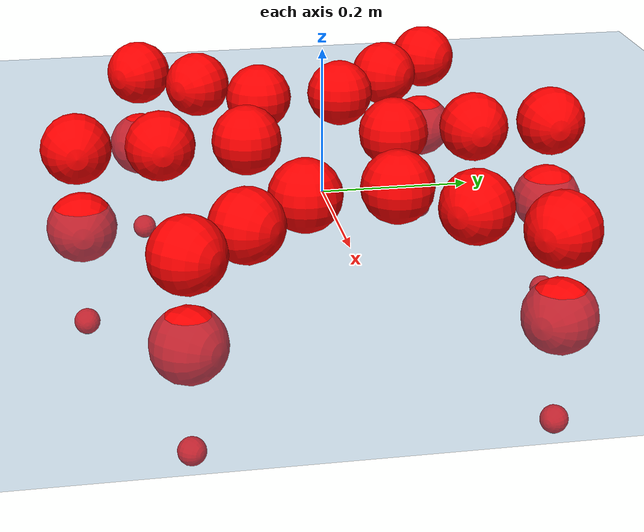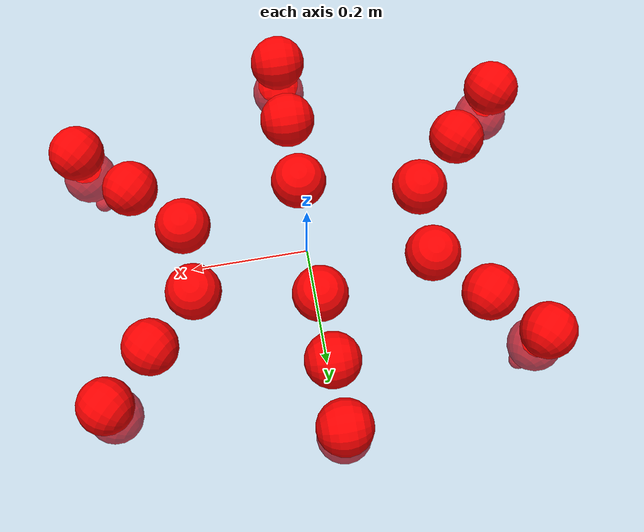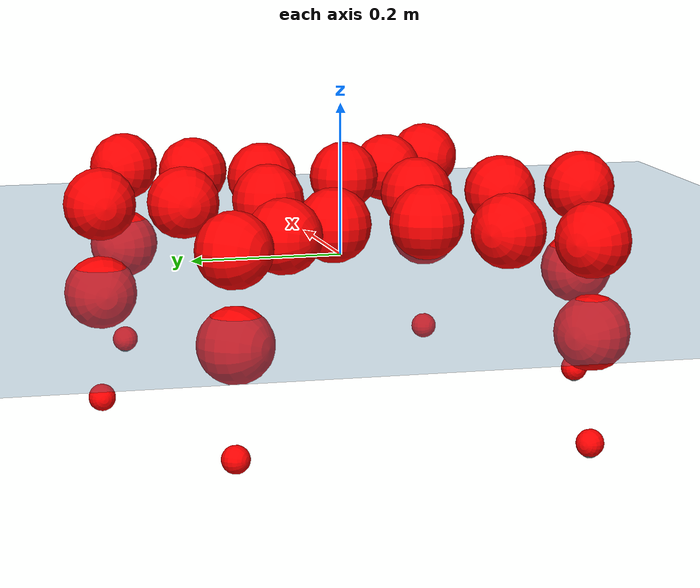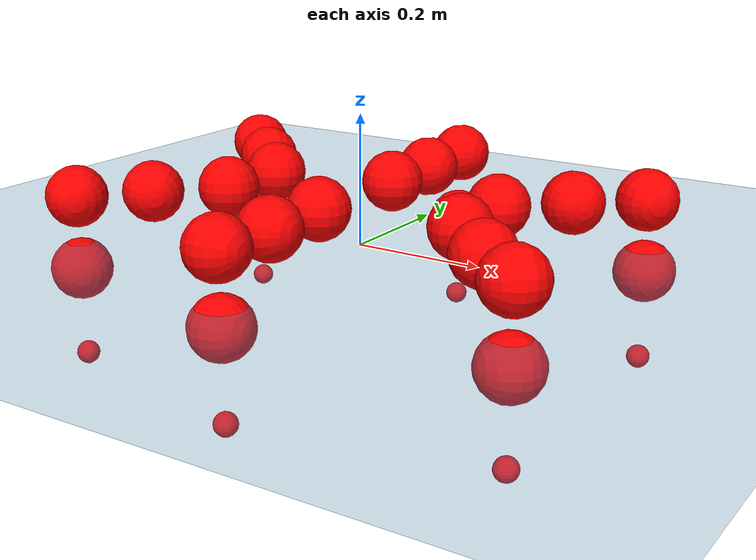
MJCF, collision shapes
<mujoco model="Golem">
  <compiler angle="radian" assetdir="assets" balanceinertia="true" inertiafromgeom="false"/>

  <option timestep="0.005" density="1.2" viscosity="2e-05"/>

  <size nkey="1"/>

  <visual>
    <quality shadowsize="8192"/>
    <map shadowclip="0.5"/>
  </visual>

  <default>
    <default class="/">
      <joint armature="0.01" damping="0.01" frictionloss="0.01"/>
      <geom contype="0" conaffinity="0" group="1" solref="-1000 -80"/>
      <site size="0.01 0.005 0.005" group="5"/>
      <general forcelimited="true" biastype="affine" gainprm="25" biasprm="0 -25 -0.5"/>
      <default class="visual">
        <geom type="mesh" group="2"/>
      </default>
      <default class="collision">
        <geom group="3"/>
      </default>
      <default class="foot">
        <geom size="0.01 0 0" condim="6" group="4" priority="1" solimp="0.015 1 0.01"/>
      </default>
      <default class="reward_collision_sphere">
        <geom group="5" rgba="1 0 0 1"/>
      </default>
    </default>
  </default>

  <asset>
    <texture type="skybox" colorspace="auto" name="//unnamed_texture_0" builtin="gradient" rgb1="0.95 0.95 0.95" rgb2="0.95 0.95 0.95" width="100" height="600"/>
    <texture type="2d" colorspace="auto" name="texplane" builtin="checker" rgb1="0.345 0.575 0.748" rgb2="0.345 0.575 0.748" markrgb="1 1 1" width="512" height="512"/>
    <material name="MatPlane" class="/" texture="texplane" texuniform="true" texrepeat="2 2" specular="0.9"/>
    <mesh name="body" class="/" file="body.stl" scale="0.001 0.001 0.001"/>
    <mesh name="coxa" class="/" file="coxa.stl" scale="0.001 0.001 0.001"/>
    <mesh name="femur" class="/" file="femur.stl" scale="0.001 0.001 0.001"/>
    <mesh name="tibia" class="/" file="tibia.stl" scale="0.001 0.001 0.001"/>
    <mesh name="tarsus" class="/" file="tarsus.stl" scale="0.001 0.001 0.001"/>
  </asset>

  <worldbody>
    <geom name="floor" class="/" size="100 100 0.125" type="plane" group="0" material="MatPlane"/>
    <light name="toplight_shadow" class="/" pos="0 0 5" dir="0.0990148 0.0990148 -0.990148" type="directional" ambient="0.04 0.04 0.04" diffuse="0.55 0.55 0.55" specular="0.12 0.12 0.12"/>
    <light name="toplight_fill" class="/" pos="0 0 5" dir="0.0990148 0.0990148 -0.990148" type="directional" castshadow="false" ambient="0.04 0.04 0.04" diffuse="0.3 0.3 0.3" specular="0.08 0.08 0.08"/>
    <body name="trunk" pos="-0.00248788 0.000451574 -0.00281451" quat="1 -1.90162e-05 -0.000315717 -8.48681e-06">
      <inertial pos="-0.000123285 -0.00239531 -0.00148096" quat="0.999995 0.0029171 0.000777619 0.000437786" mass="5.92545" diaginertia="0.0332134 0.0128763 0.0240777"/>
      <joint name="//unnamed_joint_0" type="free"/>
      <geom name="//unnamed_geom_1" class="/" pos="0 0 0.0766872" quat="1 0 0 0" type="mesh" rgba="0.9 0.9 0.9 1" mesh="body"/>
      <site name="imu" class="/" pos="0.181033 -0.0117387 0.1058" size="0.0117873"/>
      <camera name="track" class="/" pos="0 -2.1054 0" quat="0.707107 0.707107 0 0" mode="trackcom"/>
      <camera name="ego_camera" class="/" pos="0.167083 0 0.119824" quat="-0.5 -0.5 0.5 0.5"/>
      <body name="coxa_RR" pos="-0.229452 -0.0854778 0.076874" quat="0.382891 0.000456475 -3.54914e-05 -0.923793">
        <inertial pos="-0.0020987 0.000285046 -0.00253339" quat="0.999913 0.00870896 0.00526705 0.00836617" mass="0.320081" diaginertia="0.0347122 0.0127372 0.0240409"/>
        <joint name="coxa_joint_RR" class="/" pos="0 0 0" axis="-0.0028459 -0.00873969 -0.999958" range="-3.19324 3.15221" armature="0.0101153" damping="0" frictionloss="0.0101521"/>
        <geom name="//unnamed_geom_2" class="/" type="mesh" rgba="0.2 0.2 0.2 1" mesh="coxa"/>
        <geom name="//unnamed_geom_3" class="reward_collision_sphere" size="0.0471492" pos="-0.0385576 0 0"/>
        <body name="femur_RR" pos="0.0766114 -0.00119794 -0.00118317" quat="0.500128 -0.500232 0.499846 0.499794">
          <inertial pos="-0.00277448 0.000704667 -0.000304634" quat="0.999985 -0.000536546 -0.00536684 -0.00133224" mass="0.327446" diaginertia="0.035599 0.013146 0.0246294"/>
          <joint name="femur_joint_RR" class="/" pos="0 0 0" axis="0.00296898 0.011838 -0.999926" range="-3.12231 3.14077" armature="0.0130878" damping="0.0223235" frictionloss="0.0115625"/>
          <geom name="//unnamed_geom_4" class="/" type="mesh" rgba="0.9 0.9 0.9 1" mesh="femur"/>
          <geom name="//unnamed_geom_5" class="reward_collision_sphere" size="0.0471492"/>
          <body name="tibia_RR" pos="0.00145213 -0.114076 0.000723983" quat="0.000208019 1 0.000156123 -0.000216727">
            <inertial pos="0.0026982 0.00050666 -0.000512378" quat="0.999998 -0.00154085 -0.000180538 0.00132409" mass="0.340689" diaginertia="0.0348761 0.012867 0.0247914"/>
            <joint name="tibia_joint_RR" class="/" pos="0 0 0" axis="-0.000762745 -0.000554003 1" stiffness="0.00129002" range="-3.1379 3.13941" armature="0.0115" damping="0.0131778" frictionloss="0.0102211"/>
            <geom name="//unnamed_geom_6" class="/" type="mesh" rgba="0.2 0.2 0.2 1" mesh="tibia"/>
            <geom name="//unnamed_geom_7" class="reward_collision_sphere" size="0.0471492"/>
            <body name="tarsus_RR" pos="0.113726 -0.000367138 -0.000589474" quat="1 9.88816e-05 -7.00948e-05 -7.26496e-05">
              <inertial pos="0.0746452 5.74851e-05 0.00033347" quat="0.490347 0.505468 0.507621 0.496369" mass="0.33292" diaginertia="0.0350743 0.0124989 0.0246548"/>
              <joint name="tarsus_joint_RR" class="/" pos="0 0 0" axis="-0.00954676 0.0111355 0.999892" range="-3.13595 3.12788" armature="0.0112912" damping="0.0165117" frictionloss="0.0112311"/>
              <geom name="//unnamed_geom_8" class="/" type="mesh" rgba="0.9 0.9 0.9 1" mesh="tarsus"/>
              <geom name="foot_1" class="foot" size="0.012867" pos="0.143948 0 0" quat="0 -0.707107 0 0.707107"/>
              <geom name="//unnamed_geom_10" class="reward_collision_sphere" size="0.0471492"/>
              <geom name="//unnamed_geom_11" class="reward_collision_sphere" size="0.0176809" pos="0.138165 0 0"/>
              <site name="foot_1" class="foot" pos="0.143948 0 0" quat="0 -0.707107 0 0.707107" size="0.0117873"/>
            </body>
          </body>
        </body>
      </body>
      <body name="coxa_RM" pos="-0.000928833 -0.141018 0.0816262" quat="0.706686 0.00128295 9.55438e-05 -0.707526">
        <inertial pos="-0.000780043 -0.00277456 -0.00135913" quat="1 9.06768e-05 0.00048178 -0.000124471" mass="0.336256" diaginertia="0.0366605 0.0129159 0.0255236"/>
        <joint name="coxa_joint_RM" class="/" pos="0 0 0" axis="-0.00126316 0.0130282 -0.999914" range="-3.16181 3.15094" armature="0.0118651" damping="0.0154621" frictionloss="0.01179"/>
        <geom name="//unnamed_geom_12" class="/" type="mesh" rgba="0.2 0.2 0.2 1" mesh="coxa"/>
        <geom name="//unnamed_geom_13" class="reward_collision_sphere" size="0.0471492" pos="-0.0385576 0 0"/>
        <body name="femur_RM" pos="0.0767435 0.000397287 -0.00108536" quat="0.500236 -0.499697 0.49991 0.500157">
          <inertial pos="-0.000498928 -0.00289933 0.000381627" quat="0.999999 0.000490113 0.000285524 -0.00112776" mass="0.334418" diaginertia="0.0351546 0.0130038 0.0256166"/>
          <joint name="femur_joint_RM" class="/" pos="0 0 0" axis="0.00319186 -0.01424 -0.999894" stiffness="0.00994161" range="-3.10607 3.154" armature="0.013335" damping="0.0217721" frictionloss="0.0111296"/>
          <geom name="//unnamed_geom_14" class="/" type="mesh" rgba="0.9 0.9 0.9 1" mesh="femur"/>
          <geom name="//unnamed_geom_15" class="reward_collision_sphere" size="0.0471492"/>
          <body name="tibia_RM" pos="-0.00229953 -0.110574 -0.000468782" quat="0.000213021 0.999999 1.34914e-05 0.00137497">
            <inertial pos="0.000149402 0.00189569 0.000455719" quat="1 0.000385114 -0.000771611 -0.000237565" mass="0.335035" diaginertia="0.0373237 0.0138085 0.0255023"/>
            <joint name="tibia_joint_RM" class="/" pos="0 0 0" axis="-0.00250058 -0.00192701 0.999995" range="-3.08856 3.11097" armature="0.0115364" damping="0" frictionloss="0.0134196"/>
            <geom name="//unnamed_geom_16" class="/" type="mesh" rgba="0.2 0.2 0.2 1" mesh="tibia"/>
            <geom name="//unnamed_geom_17" class="reward_collision_sphere" size="0.0471492"/>
            <body name="tarsus_RM" pos="0.110273 -0.00205894 -0.00055716" quat="1 -4.42987e-06 8.48414e-06 0.00018079">
              <inertial pos="0.0755025 -0.00043428 0.0026954" quat="0.497707 0.502404 0.492694 0.507081" mass="0.337072" diaginertia="0.0373128 0.0133278 0.0254566"/>
              <joint name="tarsus_joint_RM" class="/" pos="0 0 0" axis="-0.00191517 -0.0109923 0.999938" range="-3.1656 3.13293" armature="0.0115163" damping="0.0141804" frictionloss="0.010799"/>
              <geom name="//unnamed_geom_18" class="/" type="mesh" rgba="0.9 0.9 0.9 1" mesh="tarsus"/>
              <geom name="foot_2" class="foot" size="0.0127751" pos="0.143948 0 0" quat="0 -0.707107 0 0.707107"/>
              <geom name="//unnamed_geom_20" class="reward_collision_sphere" size="0.0471492"/>
              <geom name="//unnamed_geom_21" class="reward_collision_sphere" size="0.0176809" pos="0.138165 0 0"/>
              <site name="foot_2" class="foot" pos="0.143948 0 0" quat="0 -0.707107 0 0.707107" size="0.0117873"/>
            </body>
          </body>
        </body>
      </body>
      <body name="coxa_RF" pos="0.231665 -0.0844489 0.0764265" quat="0.923645 -0.00113755 -0.00018558 -0.383247">
        <inertial pos="0.00271218 0.000933003 0.00121903" quat="0.999947 -0.00152232 0.00243168 0.00984401" mass="0.330938" diaginertia="0.0352341 0.0135441 0.0259236"/>
        <joint name="coxa_joint_RF" class="/" pos="0 0 0" axis="-0.0134846 -0.00758246 -0.99988" range="-3.13593 3.18609" armature="0.0119599" damping="0.000751878" frictionloss="0.0119156"/>
        <geom name="//unnamed_geom_22" class="/" type="mesh" rgba="0.2 0.2 0.2 1" mesh="coxa"/>
        <geom name="//unnamed_geom_23" class="reward_collision_sphere" size="0.0471492" pos="-0.0385576 0 0"/>
        <body name="femur_RF" pos="0.0765621 -0.0021919 -0.00281454" quat="0.500284 -0.499519 0.500098 0.500099">
          <inertial pos="0.000437451 3.25107e-05 0.00194505" quat="0.999955 -0.00676881 0.00344351 -0.00576347" mass="0.329677" diaginertia="0.0350353 0.0134266 0.0258887"/>
          <joint name="femur_joint_RF" class="/" pos="0 0 0" axis="-0.00367719 8.67081e-05 -0.999993" range="-3.12568 3.16481" armature="0.0119141" damping="0.00690668" frictionloss="0.0104741"/>
          <geom name="//unnamed_geom_24" class="/" type="mesh" rgba="0.9 0.9 0.9 1" mesh="femur"/>
          <geom name="//unnamed_geom_25" class="reward_collision_sphere" size="0.0471492"/>
          <body name="tibia_RF" pos="-0.00237537 -0.11436 0.00299005" quat="-0.000134209 1 0.000181171 6.87465e-05">
            <inertial pos="0.00251272 -0.00270806 0.000119962" quat="1 0.000361033 9.93084e-05 -0.000232064" mass="0.317938" diaginertia="0.0348614 0.0125475 0.0246021"/>
            <joint name="tibia_joint_RF" class="/" pos="0 0 0" axis="0.00668799 -0.00688433 0.999954" range="-3.13885 3.14007" armature="0.0124111" damping="0.0180621" frictionloss="0.0121969"/>
            <geom name="//unnamed_geom_26" class="/" type="mesh" rgba="0.2 0.2 0.2 1" mesh="tibia"/>
            <geom name="//unnamed_geom_27" class="reward_collision_sphere" size="0.0471492"/>
            <body name="tarsus_RF" pos="0.112467 0.000370297 0.000965682" quat="0.999999 0.000442723 0.000996137 0.0008775">
              <inertial pos="0.0804823 -0.0011264 0.002403" quat="0.505414 0.501828 0.502135 0.490495" mass="0.326181" diaginertia="0.0351719 0.0126232 0.025538"/>
              <joint name="tarsus_joint_RF" class="/" pos="0 0 0" axis="0.00939731 -0.000837638 0.999955" range="-3.18205 3.13701" armature="0.011868" damping="0.0106033" frictionloss="0.010565"/>
              <geom name="//unnamed_geom_28" class="/" type="mesh" rgba="0.9 0.9 0.9 1" mesh="tarsus"/>
              <geom name="foot_3" class="foot" size="0.0120616" pos="0.143948 0 0" quat="0 -0.707107 0 0.707107"/>
              <geom name="//unnamed_geom_30" class="reward_collision_sphere" size="0.0471492"/>
              <geom name="//unnamed_geom_31" class="reward_collision_sphere" size="0.0176809" pos="0.138165 0 0"/>
              <site name="foot_3" class="foot" pos="0.143948 0 0" quat="0 -0.707107 0 0.707107" size="0.0117873"/>
            </body>
          </body>
        </body>
      </body>
      <body name="coxa_LR" pos="-0.227537 0.0883016 0.0777804" quat="0.382532 0.00073769 -0.00111137 0.923941">
        <inertial pos="-0.000584779 -0.00146344 0.00154816" quat="0.999997 0.00241035 -0.000560533 -6.63506e-05" mass="0.329312" diaginertia="0.0363423 0.0134447 0.0252986"/>
        <joint name="coxa_joint_LR" class="/" pos="0 0 0" axis="-0.0029982 -0.0068209 -0.999972" range="-3.19489 3.18321" armature="0.0101995" damping="0.0180291" frictionloss="0.0115061"/>
        <geom name="//unnamed_geom_32" class="/" type="mesh" rgba="0.2 0.2 0.2 1" mesh="coxa"/>
        <geom name="//unnamed_geom_33" class="reward_collision_sphere" size="0.0471492" pos="-0.0385576 0 0"/>
        <body name="femur_LR" pos="0.0748059 -0.00267595 0.00213074" quat="0.499307 -0.500707 0.499735 0.50025">
          <inertial pos="0.0011894 -0.00287135 0.00223373" quat="0.999925 0.00346007 0.00274785 0.0114537" mass="0.333075" diaginertia="0.0357315 0.013116 0.0249665"/>
          <joint name="femur_joint_LR" class="/" pos="0 0 0" axis="0.00551568 0.00697912 0.99996" stiffness="0.00746491" range="-3.13525 3.12353" armature="0.0113649" damping="0" frictionloss="0.0113472"/>
          <geom name="//unnamed_geom_34" class="/" type="mesh" rgba="0.9 0.9 0.9 1" mesh="femur"/>
          <geom name="//unnamed_geom_35" class="reward_collision_sphere" size="0.0471492"/>
          <body name="tibia_LR" pos="0.000267348 -0.111809 -0.000158266" quat="5.72989e-05 0.999999 -0.0013245 -0.000387285">
            <inertial pos="0.00284906 -0.00168399 0.00212199" quat="0.999998 -0.000981836 -0.000740334 -0.0017029" mass="0.339592" diaginertia="0.0361602 0.0133392 0.0241705"/>
            <joint name="tibia_joint_LR" class="/" pos="0 0 0" axis="0.00567224 0.000420014 -0.999984" range="-3.13667 3.108" armature="0.0103048" damping="0.0141427" frictionloss="0.0116074"/>
            <geom name="//unnamed_geom_36" class="/" type="mesh" rgba="0.2 0.2 0.2 1" mesh="tibia"/>
            <geom name="//unnamed_geom_37" class="reward_collision_sphere" size="0.0471492"/>
            <body name="tarsus_LR" pos="0.113324 -6.20532e-05 -0.00215417" quat="1 9.05713e-05 0.000145549 0.000299028">
              <inertial pos="0.0759169 -0.00164784 -0.00234491" quat="0.499296 0.500704 0.499283 0.500716" mass="0.325379" diaginertia="0.0351148 0.0128316 0.0256852"/>
              <joint name="tarsus_joint_LR" class="/" pos="0 0 0" axis="-0.00145919 -0.00100343 -0.999998" range="-3.12297 3.11876" armature="0.0133833" damping="0.027381" frictionloss="0.0124587"/>
              <geom name="//unnamed_geom_38" class="/" type="mesh" rgba="0.9 0.9 0.9 1" mesh="tarsus"/>
              <geom name="foot_4" class="foot" size="0.0116751" pos="0.143948 0 0" quat="0.707107 0 -0.707107 0"/>
              <geom name="//unnamed_geom_40" class="reward_collision_sphere" size="0.0471492"/>
              <geom name="//unnamed_geom_41" class="reward_collision_sphere" size="0.0176809" pos="0.138165 0 0"/>
              <site name="foot_4" class="foot" pos="0.143948 0 0" quat="0.707107 0 -0.707107 0" size="0.0117873"/>
            </body>
          </body>
        </body>
      </body>
      <body name="coxa_LM" pos="-0.00300402 0.137009 0.0805171" quat="0.707121 -0.000242094 0.000210247 0.707093">
        <inertial pos="0.00139007 0.000479891 0.00290414" quat="0.999925 -0.00169683 -0.00898172 0.00818971" mass="0.321437" diaginertia="0.0342082 0.0127058 0.0237625"/>
        <joint name="coxa_joint_LM" class="/" pos="0 0 0" axis="0.00736299 -0.000289273 -0.999973" stiffness="0.00883365" range="-3.14242 3.13139" armature="0.0113877" damping="0" frictionloss="0.0101899"/>
        <geom name="//unnamed_geom_42" class="/" type="mesh" rgba="0.2 0.2 0.2 1" mesh="coxa"/>
        <geom name="//unnamed_geom_43" class="reward_collision_sphere" size="0.0471492" pos="-0.0385576 0 0"/>
        <body name="femur_LM" pos="0.0739055 0.000544269 0.00122406" quat="0.499976 -0.499894 0.500127 0.500003">
          <inertial pos="0.00255712 0.000465138 -0.00283086" quat="0.999937 0.00985656 -0.00226331 -0.0048849" mass="0.327271" diaginertia="0.0364683 0.0134331 0.0259098"/>
          <joint name="femur_joint_LM" class="/" pos="0 0 0" axis="-0.00160313 0.000325549 0.999999" range="-3.1279 3.0823" armature="0.0107634" damping="0.0212394" frictionloss="0.0118639"/>
          <geom name="//unnamed_geom_44" class="/" type="mesh" rgba="0.9 0.9 0.9 1" mesh="femur"/>
          <geom name="//unnamed_geom_45" class="reward_collision_sphere" size="0.0471492"/>
          <body name="tibia_LM" pos="-0.00229568 -0.108902 -0.000213487" quat="0.000711752 1 0.000292325 -0.000592305">
            <inertial pos="-0.000608047 0.000291096 -0.00031845" quat="0.999936 0.0107345 0.00316314 0.00142631" mass="0.328095" diaginertia="0.0344798 0.0126275 0.0252814"/>
            <joint name="tibia_joint_LM" class="/" pos="0 0 0" axis="7.3272e-05 -0.000692248 -1" stiffness="0.00925429" range="-3.09987 3.08326" armature="0.0103779" damping="0.0130414" frictionloss="0.0122805"/>
            <geom name="//unnamed_geom_46" class="/" type="mesh" rgba="0.2 0.2 0.2 1" mesh="tibia"/>
            <geom name="//unnamed_geom_47" class="reward_collision_sphere" size="0.0471492"/>
            <body name="tarsus_LM" pos="0.114231 0.000757653 -0.00293496" quat="0.999999 0.000553024 0.000247877 0.00116087">
              <inertial pos="0.0755228 -0.000186981 -0.00261771" quat="0.504716 0.494079 0.49962 0.501525" mass="0.336581" diaginertia="0.0346184 0.012924 0.0243668"/>
              <joint name="tarsus_joint_LM" class="/" pos="0 0 0" axis="0.00247321 0.00503531 -0.999984" range="-3.09707 3.13991" armature="0.0131206" damping="0.0125325" frictionloss="0.011494"/>
              <geom name="//unnamed_geom_48" class="/" type="mesh" rgba="0.9 0.9 0.9 1" mesh="tarsus"/>
              <geom name="foot_5" class="foot" size="0.0114288" pos="0.143948 0 0" quat="0.707107 0 -0.707107 0"/>
              <geom name="//unnamed_geom_50" class="reward_collision_sphere" size="0.0471492"/>
              <geom name="//unnamed_geom_51" class="reward_collision_sphere" size="0.0176809" pos="0.138165 0 0"/>
              <site name="foot_5" class="foot" pos="0.143948 0 0" quat="0.707107 0 -0.707107 0" size="0.0117873"/>
            </body>
          </body>
        </body>
      </body>
      <body name="coxa_LF" pos="0.229292 0.0869364 0.0794917" quat="0.923438 -0.000123351 0.000240347 0.383747">
        <inertial pos="0.000311237 0.000267277 -0.000714387" quat="0.999984 0.00528408 -0.00125129 -0.00187015" mass="0.333483" diaginertia="0.0352786 0.0126376 0.0242541"/>
        <joint name="coxa_joint_LF" class="/" pos="0 0 0" axis="-0.00852504 -0.00559403 -0.999948" range="-3.09424 3.13998" armature="0.0133986" damping="0.0145207" frictionloss="0.010795"/>
        <geom name="//unnamed_geom_52" class="/" type="mesh" rgba="0.2 0.2 0.2 1" mesh="coxa"/>
        <geom name="//unnamed_geom_53" class="reward_collision_sphere" size="0.0471492" pos="-0.0385576 0 0"/>
        <body name="femur_LF" pos="0.0753661 -0.00179276 -0.000845302" quat="0.500254 -0.50016 0.49965 0.499935">
          <inertial pos="-0.000411103 0.00257463 -0.00121461" quat="0.999969 0.00311695 0.000166156 -0.00717411" mass="0.340671" diaginertia="0.0373762 0.0132924 0.0248747"/>
          <joint name="femur_joint_LF" class="/" pos="0 0 0" axis="0.0111378 0.0029104 0.999934" stiffness="0.0114718" range="-3.16442 3.14313" armature="0.0132661" damping="0.00344402" frictionloss="0.011687"/>
          <geom name="//unnamed_geom_54" class="/" type="mesh" rgba="0.9 0.9 0.9 1" mesh="femur"/>
          <geom name="//unnamed_geom_55" class="reward_collision_sphere" size="0.0471492"/>
          <body name="tibia_LF" pos="0.00192328 -0.116379 -0.000107123" quat="0.000322953 1 0.000215832 -0.000230272">
            <inertial pos="0.000543778 0.000596613 -0.000530235" quat="0.999931 -0.00853506 8.95193e-05 -0.00803195" mass="0.324182" diaginertia="0.0342862 0.0131916 0.0242866"/>
            <joint name="tibia_joint_LF" class="/" pos="0 0 0" axis="0.00362629 -0.012411 -0.999916" stiffness="0.00745597" range="-3.09024 3.12659" armature="0.0111342" damping="0" frictionloss="0.0102426"/>
            <geom name="//unnamed_geom_56" class="/" type="mesh" rgba="0.2 0.2 0.2 1" mesh="tibia"/>
            <geom name="//unnamed_geom_57" class="reward_collision_sphere" size="0.0471492"/>
            <body name="tarsus_LF" pos="0.110355 0.00218203 0.00140406" quat="1 -1.55008e-05 3.80605e-05 4.29848e-05">
              <inertial pos="0.0747066 -0.00124035 0.000591346" quat="0.496962 0.498561 0.507302 0.497103" mass="0.322073" diaginertia="0.0351249 0.0128276 0.0242626"/>
              <joint name="tarsus_joint_LF" class="/" pos="0 0 0" axis="-0.000313829 -0.00173163 -0.999998" stiffness="0.00285705" range="-3.17121 3.13138" armature="0.0135713" damping="0.0203052" frictionloss="0.0134295"/>
              <geom name="//unnamed_geom_58" class="/" type="mesh" rgba="0.9 0.9 0.9 1" mesh="tarsus"/>
              <geom name="foot_6" class="foot" size="0.0128184" pos="0.143948 0 0" quat="0.707107 0 -0.707107 0"/>
              <geom name="//unnamed_geom_60" class="reward_collision_sphere" size="0.0471492"/>
              <geom name="//unnamed_geom_61" class="reward_collision_sphere" size="0.0176809" pos="0.138165 0 0"/>
              <site name="foot_6" class="foot" pos="0.143948 0 0" quat="0.707107 0 -0.707107 0" size="0.0117873"/>
            </body>
          </body>
        </body>
      </body>
    </body>
  </worldbody>

  <contact>
    <pair class="/" geom1="floor" geom2="foot_1" name="//unnamed_contact_0"/>
    <pair class="/" geom1="floor" geom2="foot_2" name="//unnamed_contact_1"/>
    <pair class="/" geom1="floor" geom2="foot_3" name="//unnamed_contact_2"/>
    <pair class="/" geom1="floor" geom2="foot_4" name="//unnamed_contact_3"/>
    <pair class="/" geom1="floor" geom2="foot_5" name="//unnamed_contact_4"/>
    <pair class="/" geom1="floor" geom2="foot_6" name="//unnamed_contact_5"/>
  </contact>

  <actuator>
    <general name="coxa_joint_RR" class="/" joint="coxa_joint_RR" forcerange="-8.15546 8.15546" gainprm="28.6851" biasprm="0 -28.6851 -0.619567"/>
    <general name="femur_joint_RR" class="/" joint="femur_joint_RR" forcerange="-8.43746 8.43746" gainprm="28.6851" biasprm="0 -28.6851 -0.619567"/>
    <general name="tibia_joint_RR" class="/" joint="tibia_joint_RR" forcerange="-8.51166 8.51166" gainprm="28.6851" biasprm="0 -28.6851 -0.619567"/>
    <general name="tarsus_joint_RR" class="/" joint="tarsus_joint_RR" forcerange="-8.40504 8.40504" gainprm="28.6851" biasprm="0 -28.6851 -0.619567"/>
    <general name="coxa_joint_RM" class="/" joint="coxa_joint_RM" forcerange="-8.83079 8.83079" gainprm="28.6851" biasprm="0 -28.6851 -0.619567"/>
    <general name="femur_joint_RM" class="/" joint="femur_joint_RM" forcerange="-8.42957 8.42957" gainprm="28.6851" biasprm="0 -28.6851 -0.619567"/>
    <general name="tibia_joint_RM" class="/" joint="tibia_joint_RM" forcerange="-8.50388 8.50388" gainprm="28.6851" biasprm="0 -28.6851 -0.619567"/>
    <general name="tarsus_joint_RM" class="/" joint="tarsus_joint_RM" forcerange="-7.91499 7.91499" gainprm="28.6851" biasprm="0 -28.6851 -0.619567"/>
    <general name="coxa_joint_RF" class="/" joint="coxa_joint_RF" forcerange="-8.85422 8.85422" gainprm="28.6851" biasprm="0 -28.6851 -0.619567"/>
    <general name="femur_joint_RF" class="/" joint="femur_joint_RF" forcerange="-8.5426 8.5426" gainprm="28.6851" biasprm="0 -28.6851 -0.619567"/>
    <general name="tibia_joint_RF" class="/" joint="tibia_joint_RF" forcerange="-8.54912 8.54912" gainprm="28.6851" biasprm="0 -28.6851 -0.619567"/>
    <general name="tarsus_joint_RF" class="/" joint="tarsus_joint_RF" forcerange="-8.07612 8.07612" gainprm="28.6851" biasprm="0 -28.6851 -0.619567"/>
    <general name="coxa_joint_LR" class="/" joint="coxa_joint_LR" forcerange="-7.83467 7.83467" gainprm="28.6851" biasprm="0 -28.6851 -0.619567"/>
    <general name="femur_joint_LR" class="/" joint="femur_joint_LR" forcerange="-8.12544 8.12544" gainprm="28.6851" biasprm="0 -28.6851 -0.619567"/>
    <general name="tibia_joint_LR" class="/" joint="tibia_joint_LR" forcerange="-8.76021 8.76021" gainprm="28.6851" biasprm="0 -28.6851 -0.619567"/>
    <general name="tarsus_joint_LR" class="/" joint="tarsus_joint_LR" forcerange="-8.50879 8.50879" gainprm="28.6851" biasprm="0 -28.6851 -0.619567"/>
    <general name="coxa_joint_LM" class="/" joint="coxa_joint_LM" forcerange="-8.83699 8.83699" gainprm="28.6851" biasprm="0 -28.6851 -0.619567"/>
    <general name="femur_joint_LM" class="/" joint="femur_joint_LM" forcerange="-7.70184 7.70184" gainprm="28.6851" biasprm="0 -28.6851 -0.619567"/>
    <general name="tibia_joint_LM" class="/" joint="tibia_joint_LM" forcerange="-8.59357 8.59357" gainprm="28.6851" biasprm="0 -28.6851 -0.619567"/>
    <general name="tarsus_joint_LM" class="/" joint="tarsus_joint_LM" forcerange="-9.49313 9.49313" gainprm="28.6851" biasprm="0 -28.6851 -0.619567"/>
    <general name="coxa_joint_LF" class="/" joint="coxa_joint_LF" forcerange="-7.90138 7.90138" gainprm="28.6851" biasprm="0 -28.6851 -0.619567"/>
    <general name="femur_joint_LF" class="/" joint="femur_joint_LF" forcerange="-9.34315 9.34315" gainprm="28.6851" biasprm="0 -28.6851 -0.619567"/>
    <general name="tibia_joint_LF" class="/" joint="tibia_joint_LF" forcerange="-8.64945 8.64945" gainprm="28.6851" biasprm="0 -28.6851 -0.619567"/>
    <general name="tarsus_joint_LF" class="/" joint="tarsus_joint_LF" forcerange="-8.84282 8.84282" gainprm="28.6851" biasprm="0 -28.6851 -0.619567"/>
  </actuator>

  <sensor>
    <gyro site="imu" name="imu_angular_velocity"/>
    <velocimeter site="imu" name="imu_linear_velocity"/>
    <framelinvel objtype="site" objname="foot_1" name="foot_1_global_linear_velocity"/>
    <framelinvel objtype="site" objname="foot_2" name="foot_2_global_linear_velocity"/>
    <framelinvel objtype="site" objname="foot_3" name="foot_3_global_linear_velocity"/>
    <framelinvel objtype="site" objname="foot_4" name="foot_4_global_linear_velocity"/>
    <framelinvel objtype="site" objname="foot_5" name="foot_5_global_linear_velocity"/>
    <framelinvel objtype="site" objname="foot_6" name="foot_6_global_linear_velocity"/>
  </sensor>

  <keyframe>
    <key name="home" qpos="0 0 0.1457 1 0 0 0 0 0 0 0 0 0 0 0 0 0 0 0 0 0 0 0 0 0 0 0 0 0 0 0"/>
  </keyframe>
</mujoco>
